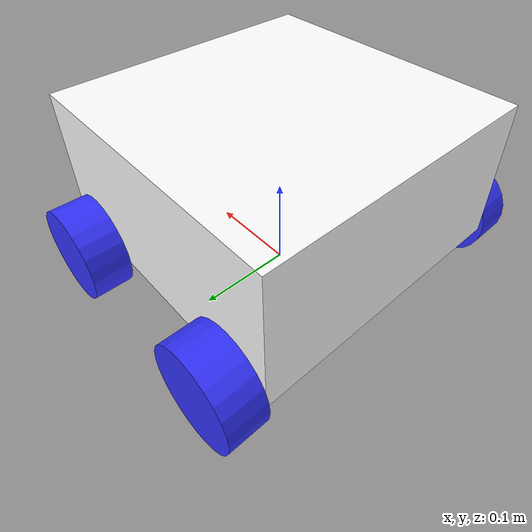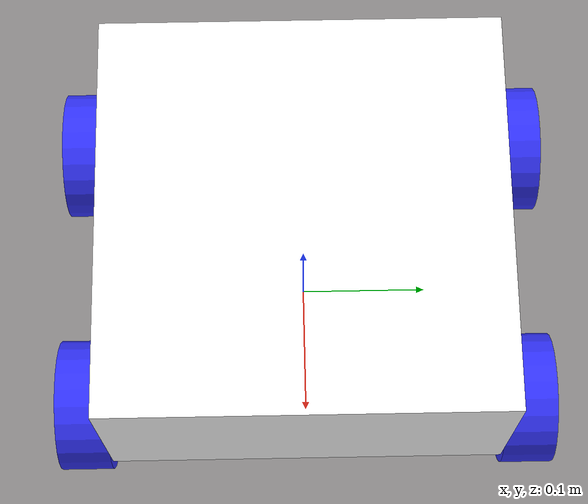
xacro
<?xml version="1.0"?>

<robot xmlns:xacro="http://www.ros.org/wiki/xacro" name="robix_v2">

    <!-- INCLUDE INERTIAL MACROS          -->

    <xacro:include filename="inertial_macros.xacro"/>

    <!-- CONSTANTS                        -->

    <!-- Chassis -->
    <xacro:property name="chassis_length" value="0.30"/>
    <xacro:property name="chassis_width"  value="0.30"/>
    <xacro:property name="chassis_height" value="0.15"/>
    <xacro:property name="chassis_mass"   value="0.50"/>

    <!-- Wheels -->
    <xacro:property name="wheel_radius" value="0.05"/>
    <xacro:property name="wheel_width"  value="0.04"/>
    <xacro:property name="wheel_mass"   value="0.10"/>

    <!-- Wheel Positions -->
    <xacro:property name="wheel_x" value="0.105"/>
    <xacro:property name="wheel_y" value="0.170"/>

    <!-- wheel centre is 50 mm above ground -->
    <xacro:property name="wheel_z" value="0.05"/>

    <!-- chassis centre height -->
    <xacro:property name="chassis_z" value="0.125"/>

    <!-- MATERIALS                        -->

    <material name="white">
        <color rgba="1 1 1 1"/>
    </material>

    <material name="orange">
        <color rgba="1 0.3 0.1 1"/>
    </material>

    <material name="blue">
        <color rgba="0.2 0.2 1 1"/>
    </material>

    <material name="black">
        <color rgba="0 0 0 1"/>
    </material>

    <!-- BASE LINK                        -->

    <link name="base_link"/>

    <!-- CHASSIS                          -->

    <joint name="chassis_joint" type="fixed">

        <parent link="base_link"/>
        <child link="chassis"/>

        <origin
            xyz="0 0 ${chassis_z}"
            rpy="0 0 0"/>

    </joint>

    <link name="chassis">

        <visual>

            <origin xyz="0 0 0" rpy="0 0 0"/>

            <geometry>

                <box size="
                ${chassis_length}
                ${chassis_width}
                ${chassis_height}"/>

            </geometry>

            <material name="white"/>

        </visual>

        <collision>

            <origin xyz="0 0 0" rpy="0 0 0"/>

            <geometry>

                <box size="
                ${chassis_length}
                ${chassis_width}
                ${chassis_height}"/>

            </geometry>

        </collision>

        <xacro:inertial_box
            mass="${chassis_mass}"
            x="${chassis_length}"
            y="${chassis_width}"
            z="${chassis_height}">

            <origin xyz="0 0 0" rpy="0 0 0"/>

        </xacro:inertial_box>

    </link>

    <!-- FRONT LEFT WHEEL                                  -->

    <joint name="front_left_wheel_joint" type="continuous">

        <parent link="base_link"/>
        <child link="front_left_wheel"/>

        <origin
            xyz="${wheel_x} ${wheel_y} ${wheel_z}"
            rpy="1.5708 0 0"/>

        <axis xyz="0 0 1"/>

    </joint>

    <link name="front_left_wheel">

        <visual>

            <geometry>

                <cylinder
                    radius="${wheel_radius}"
                    length="${wheel_width}"/>

            </geometry>

            <material name="blue"/>

        </visual>

        <collision>

            <geometry>

                <cylinder
                    radius="${wheel_radius}"
                    length="${wheel_width}"/>

            </geometry>

        </collision>

        <xacro:inertial_cylinder
            mass="${wheel_mass}"
            length="${wheel_width}"
            radius="${wheel_radius}">

            <origin xyz="0 0 0" rpy="0 0 0"/>

        </xacro:inertial_cylinder>

    </link>

    <!-- REAR LEFT WHEEL                                   -->

    <joint name="rear_left_wheel_joint" type="continuous">

        <parent link="base_link"/>
        <child link="rear_left_wheel"/>

        <origin
            xyz="-${wheel_x} ${wheel_y} ${wheel_z}"
            rpy="1.5708 0 0"/>

        <axis xyz="0 0 1"/>

    </joint>

    <link name="rear_left_wheel">

        <visual>

            <geometry>

                <cylinder
                    radius="${wheel_radius}"
                    length="${wheel_width}"/>

            </geometry>

            <material name="blue"/>

        </visual>

        <collision>

            <geometry>

                <cylinder
                    radius="${wheel_radius}"
                    length="${wheel_width}"/>

            </geometry>

        </collision>

        <xacro:inertial_cylinder
            mass="${wheel_mass}"
            length="${wheel_width}"
            radius="${wheel_radius}">

            <origin xyz="0 0 0" rpy="0 0 0"/>

        </xacro:inertial_cylinder>

    </link>

    <!-- FRONT RIGHT WHEEL                                 -->

    <joint name="front_right_wheel_joint" type="continuous">

        <parent link="base_link"/>
        <child link="front_right_wheel"/>

        <origin
            xyz="${wheel_x} -${wheel_y} ${wheel_z}"
            rpy="1.5708 0 0"/>

        <axis xyz="0 0 -1"/>

    </joint>

    <link name="front_right_wheel">

        <visual>

            <geometry>

                <cylinder
                    radius="${wheel_radius}"
                    length="${wheel_width}"/>

            </geometry>

            <material name="blue"/>

        </visual>

        <collision>

            <geometry>

                <cylinder
                    radius="${wheel_radius}"
                    length="${wheel_width}"/>

            </geometry>

        </collision>

        <xacro:inertial_cylinder
            mass="${wheel_mass}"
            length="${wheel_width}"
            radius="${wheel_radius}">

            <origin xyz="0 0 0" rpy="0 0 0"/>

        </xacro:inertial_cylinder>

    </link>

    <!-- REAR RIGHT WHEEL                                  -->

    <joint name="rear_right_wheel_joint" type="continuous">

        <parent link="base_link"/>
        <child link="rear_right_wheel"/>

        <origin
            xyz="-${wheel_x} -${wheel_y} ${wheel_z}"
            rpy="1.5708 0 0"/>

        <axis xyz="0 0 -1"/>

    </joint>

    <link name="rear_right_wheel">

        <visual>

            <geometry>

                <cylinder
                    radius="${wheel_radius}"
                    length="${wheel_width}"/>

            </geometry>

            <material name="blue"/>

        </visual>

        <collision>

            <geometry>

                <cylinder
                    radius="${wheel_radius}"
                    length="${wheel_width}"/>

            </geometry>

        </collision>

        <xacro:inertial_cylinder
            mass="${wheel_mass}"
            length="${wheel_width}"
            radius="${wheel_radius}">

            <origin xyz="0 0 0" rpy="0 0 0"/>

        </xacro:inertial_cylinder>

    </link>

</robot>

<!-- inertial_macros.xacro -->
<robot xmlns:xacro="http://www.ros.org/wiki/xacro">

    <!-- STANDARD INERTIAL MACROS FOR ROBIX V2                -->
    <!-- Suitable for 4-wheel-drive robot model               -->

    <!-- BOX INERTIA                                           -->
    <!-- Used for chassis, battery enclosure, electronics etc. -->

    <xacro:macro name="inertial_box" params="mass x y z *origin">

        <inertial>

            <xacro:insert_block name="origin"/>

            <mass value="${mass}"/>

            <inertia
                ixx="${(1.0/12.0) * mass * (y*y + z*z)}"
                ixy="0.0"
                ixz="0.0"

                iyy="${(1.0/12.0) * mass * (x*x + z*z)}"
                iyz="0.0"

                izz="${(1.0/12.0) * mass * (x*x + y*y)}"
            />

        </inertial>

    </xacro:macro>

    <!-- CYLINDER INERTIA                                      -->
    <!-- Used for all 4 wheels                                 -->
    <!-- Cylinder axis is assumed to be along local Z-axis     -->

    <xacro:macro name="inertial_cylinder"
                 params="mass length radius *origin">

        <inertial>

            <xacro:insert_block name="origin"/>

            <mass value="${mass}"/>

            <inertia
                ixx="${(1.0/12.0) * mass *
                      (3.0*radius*radius + length*length)}"

                ixy="0.0"
                ixz="0.0"

                iyy="${(1.0/12.0) * mass *
                      (3.0*radius*radius + length*length)}"

                iyz="0.0"

                izz="${(1.0/2.0) * mass *
                      radius*radius}"
            />

        </inertial>

    </xacro:macro>

    <!-- SPHERE INERTIA                                        -->
    <!-- Optional: useful for caster / sensor models           -->

    <xacro:macro name="inertial_sphere"
                 params="mass radius *origin">

        <inertial>

            <xacro:insert_block name="origin"/>

            <mass value="${mass}"/>

            <inertia
                ixx="${(2.0/5.0) * mass * radius*radius}"
                ixy="0.0"
                ixz="0.0"

                iyy="${(2.0/5.0) * mass * radius*radius}"
                iyz="0.0"

                izz="${(2.0/5.0) * mass * radius*radius}"
            />

        </inertial>

    </xacro:macro>

</robot>
